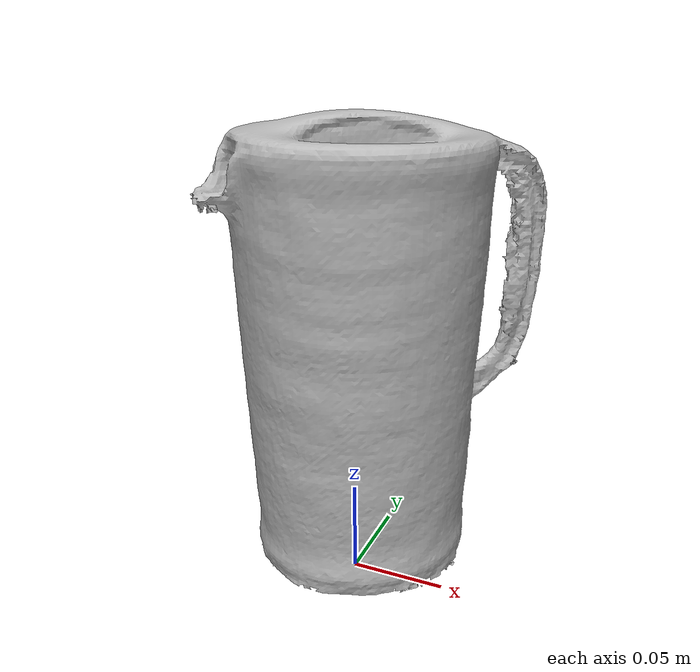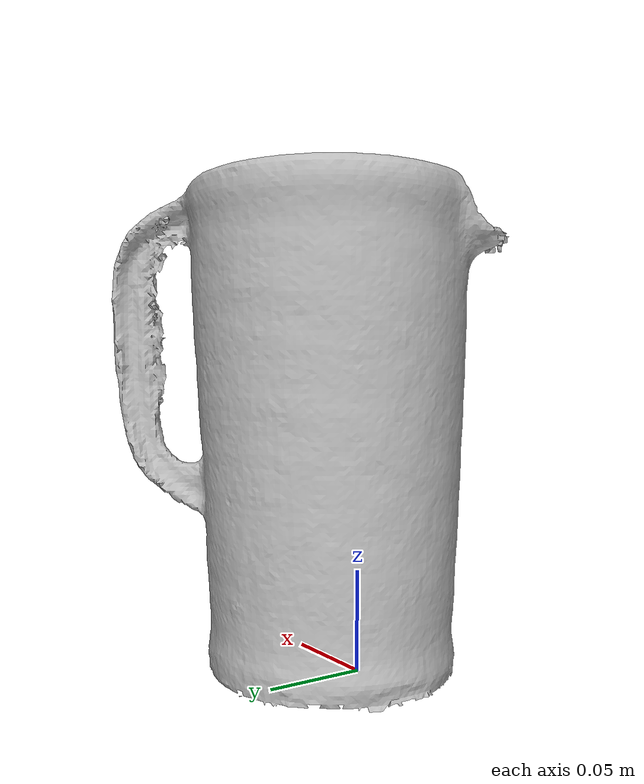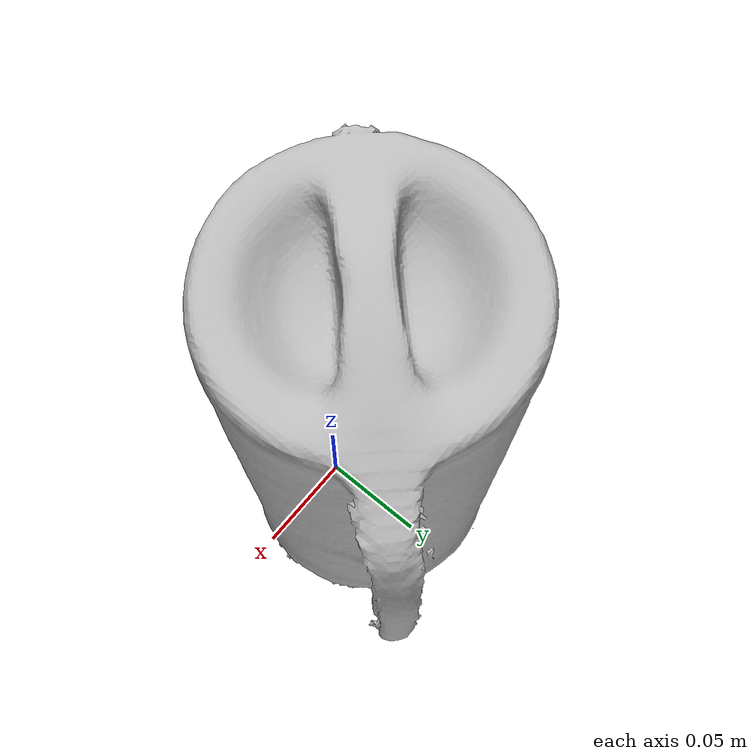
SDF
<?xml version="1.0" ?>
<sdf version="1.4">
  <model name="019_pitcher_base">
    <pose>0 0 0  0 0 0</pose>
    <link name="body">
      <inertial>
        <!-- Volume:  2.6285012210e-03 -->
        <mass> 1.0 </mass>
        <!-- Center of mass: -5.3725800000e-03  1.9187750000e-02  1.2435016000e-01 -->
        <pose> -5.3725800000e-03  1.9187750000e-02  1.2435016000e-01 0 0 0 </pose>
        <!-- Inertia matrix -->
        <inertia>
          <ixx>  5.1784632118e-03 </ixx>
          <ixy> -3.3917992652e-05 </ixy>
          <ixz> -1.5249124550e-05 </ixz>
          <iyy>  5.1855805044e-03 </iyy>
          <iyz> -1.0999180205e-05 </iyz>
          <izz>  1.8750793791e-03 </izz>
        </inertia>
      </inertial>
      <visual name="visual">
        <geometry>
          <mesh>
            <uri>model://019_pitcher_base/nontextured.stl</uri>
          </mesh>
        </geometry>
      </visual>
      <collision name="collision">
        <geometry>
          <mesh>
            <uri>model://019_pitcher_base/nontextured.stl</uri>
          </mesh>
        </geometry>
        <max_contacts>10</max_contacts>
        <surface>
          <friction>
            <ode>
              <mu>0.8</mu>
              <mu2>0.8</mu2>
              <slip1>0</slip1>
              <slip2>0</slip2>
            </ode>
            <torsional>
              <ode/>
            </torsional>
          </friction>
          <contact>
            <ode>
              <kp>1000000.0</kp>
              <kd>1.0</kd>
              <max_vel>0.0</max_vel>
            </ode>
          </contact>
        </surface>
      </collision>
    </link>
  </model>
</sdf>
